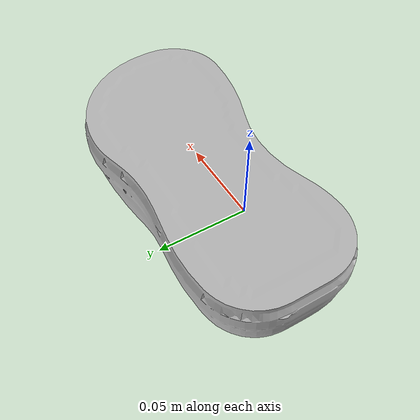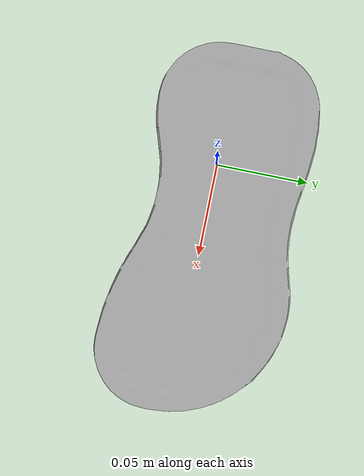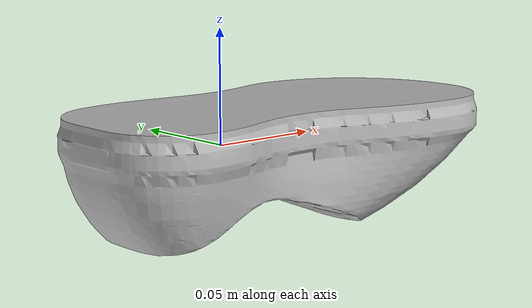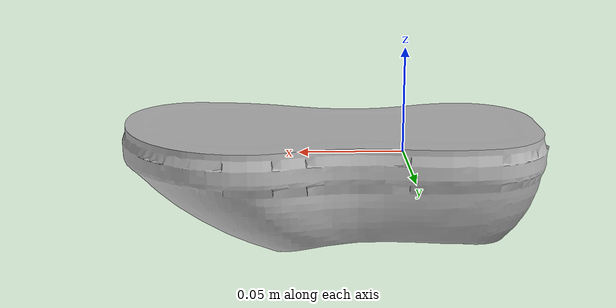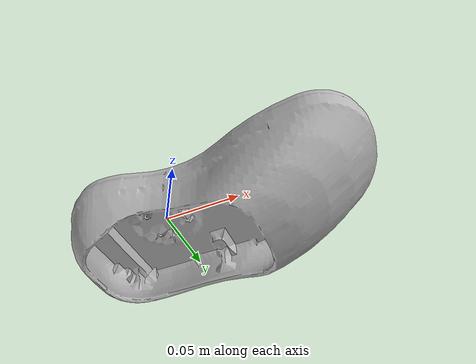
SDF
<sdf version='1.6'>
  <model name='singleLinkModel'>
    <link name='r_foot'>
      <pose frame=''>0 0 0 0 -0 0</pose>
      <inertial>
        <pose frame=''>0.033624 0.005365 -0.001138 -1.5708 -0 -1.5708</pose>
        <mass>0.38227</mass>
        <inertia>
          <ixx>0.00120765</ixx>
          <ixy>3.70545e-07</ixy>
          <ixz>-5.78137e-05</ixz>
          <iyy>0.00141242</iyy>
          <iyz>-7.82502e-06</iyz>
          <izz>0.000273419</izz>
        </inertia>
      </inertial>
      <collision name='r_foot_collision'>
        <pose frame=''>0.047209 -0.0701 -0.647438 -1.5708 -0 -1.5708</pose>
        <geometry>
          <mesh>
            <scale>0.001 0.001 0.001</scale>
            <uri>model://iCub/meshes/simmechanics/sim_sea_2-5_r_sole_prt-binary.stl</uri>
          </mesh>
        </geometry>
        <surface>
          <bounce>
            <restitution_coefficient>0</restitution_coefficient>
            <threshold>100000</threshold>
          </bounce>
          <contact>
            <ode>
              <kp>1.8e+07</kp>
              <kd>100</kd>
              <max_vel>100</max_vel>
              <min_depth>0.0001</min_depth>
            </ode>
          </contact>
          <friction>
            <ode>
              <mu>1</mu>
              <mu2>1</mu2>
              <fdir1>0 0 0</fdir1>
            </ode>
          </friction>
        </surface>
        <max_contacts>4</max_contacts>
      </collision>
      <visual name='r_foot_visual'>
        <pose frame=''>0.047209 -0.0701 -0.647438 -1.5708 -0 -1.5708</pose>
        <geometry>
          <mesh>
            <scale>0.001 0.001 0.001</scale>
            <uri>model://iCub/meshes/simmechanics/sim_sea_2-5_r_sole_prt-binary.stl</uri>
          </mesh>
        </geometry>
        <material>
          <script>
            <uri>__default__</uri>
            <name>__default__</name>
          </script>
        </material>
      </visual>
      <velocity_decay/>
      <gravity>1</gravity>
      <velocity_decay/>
      <sensor name='r_foot_acc' type='imu'>
        <always_on>1</always_on>
        <update_rate>100</update_rate>
        <pose frame=''>0.103474 -0.000807 -0.001215 0 0 -1.5708</pose>
        <plugin name='iCub_yarp_gazebo_plugin_ACC' filename='libgazebo_yarp_inertial.so'/>
      </sensor>
    </link>
  </model>
</sdf>
